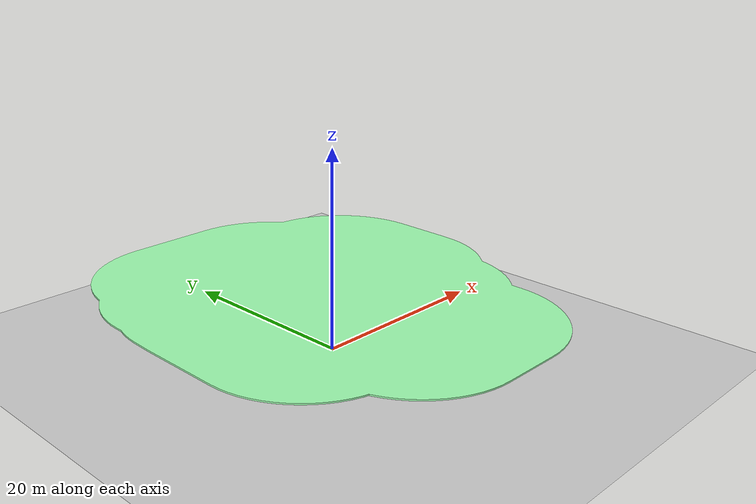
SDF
<sdf version="1.6">
 <world name="default">
  <atmosphere type="adiabatic"/>
  <wind><linear_velocity>0 0 0</linear_velocity></wind>
  <gravity>0 0 -9.8</gravity>
  <model name="static_cylinder">
   <pose>2.57236 -3.92461 0.339561 0 -0 2.93908</pose>
   <static>1</static>
   <allow_auto_disable>0</allow_auto_disable>
   <link name="link">
    <collision name="collision">
     <geometry>
      <cylinder><radius>1.2403268188352738</radius><length>0.6791229968778483</length></cylinder>
     </geometry>
     <max_contacts>20</max_contacts>
    </collision>
    <visual name="visual">
     <geometry>
      <cylinder><radius>1.2403268188352738</radius><length>0.6791229968778483</length></cylinder>
     </geometry>
     <material>
      <ambient>0.964706 0.407843 0.556863 1</ambient>
      <diffuse>0.9647058823529412 0.40784313725490196 0.5568627450980392 1</diffuse>
     </material>
     <transparency>0.0</transparency>
    </visual>
   </link>
  </model>
  <model name="dyn_box">
   <pose>-0.112117 6.78788 1.38852 0 0 -0.950603</pose>
   <static>0</static>
   <allow_auto_disable>0</allow_auto_disable>
   <link name="link">
    <collision name="collision">
     <geometry><box><size>4.59757 4.79995 2.77705</size></box></geometry>
     <max_contacts>20</max_contacts>
    </collision>
    <visual name="visual">
     <geometry><box><size>4.59757 4.79995 2.77705</size></box></geometry>
     <material>
      <ambient>0.780392 0.278431 0.403922 1</ambient>
      <diffuse>0.7803921568627451 0.2784313725490196 0.403921568627451 1</diffuse>
     </material>
     <transparency>0.0</transparency>
    </visual>
    <inertial>
     <inertia>
      <ixx>1.3162738842814965</ixx>
      <iyy>1.234869288223089</iyy>
      <izz>1.8909422509244906</izz>
      <ixy>0.0</ixy>
      <ixz>0.0</ixz>
      <iyz>0.0</iyz>
     </inertia>
     <mass>0.5136428425951027</mass>
    </inertial>
   </link>
  </model>
  <model name="dyn_box_1">
   <pose>-5.99178 8.41546 1.95767 0 -0 1.1997</pose>
   <static>0</static>
   <allow_auto_disable>0</allow_auto_disable>
   <link name="link">
    <collision name="collision">
     <geometry><box><size>3.77422 0.0405218 3.91533</size></box></geometry>
     <max_contacts>20</max_contacts>
    </collision>
    <visual name="visual">
     <geometry><box><size>3.77422 0.0405218 3.91533</size></box></geometry>
     <material>
      <ambient>0.792157 0.482353 0.501961 1</ambient>
      <diffuse>0.792156862745098 0.4823529411764706 0.5019607843137255 1</diffuse>
     </material>
     <transparency>0.0</transparency>
    </visual>
    <inertial>
     <inertia>
      <ixx>1.1927884914722653</ixx>
      <iyy>2.3009015575441274</iyy>
      <izz>1.1083685638994984</izz>
      <ixy>0.0</ixy>
      <ixz>0.0</ixz>
      <iyz>0.0</iyz>
     </inertia>
     <mass>0.933599557756421</mass>
    </inertial>
   </link>
  </model>
  <model name="static_cylinder_1">
   <pose>3.59666 -7.55673 0.225346 0 0 -0.435739</pose>
   <static>1</static>
   <allow_auto_disable>0</allow_auto_disable>
   <link name="link">
    <collision name="collision">
     <geometry>
      <cylinder><radius>0.08633876422519937</radius><length>0.450691455576256</length></cylinder>
     </geometry>
     <max_contacts>20</max_contacts>
    </collision>
    <visual name="visual">
     <geometry>
      <cylinder><radius>0.08633876422519937</radius><length>0.450691455576256</length></cylinder>
     </geometry>
     <material>
      <ambient>0.0156863 0.521569 0.819608 1</ambient>
      <diffuse>0.01568627450980392 0.5215686274509804 0.8196078431372549 1</diffuse>
     </material>
     <transparency>0.0</transparency>
    </visual>
   </link>
  </model>
  <include>
   <uri>model://ceiling_11</uri>
   <pose>0 0 6 0 -0 0</pose>
   <name>ceiling_11</name>
   <static>1</static>
  </include>
  <include><uri>model://ground_plane</uri><name>ground_plane</name><static>1</static></include>
  <include><uri>model://sun</uri></include>
  <physics name="default_physics" default="0" type="ode">
   <gravity>0 0 -9.8066</gravity>
   <ode>
    <solver>
     <type>quick</type>
     <iters>10</iters>
     <sor>1.3</sor>
     <use_dynamic_moi_rescaling>0</use_dynamic_moi_rescaling>
    </solver>
    <constraints>
     <cfm>0</cfm>
     <erp>0.2</erp>
     <contact_max_correcting_vel>100</contact_max_correcting_vel>
     <contact_surface_layer>0.001</contact_surface_layer>
    </constraints>
   </ode>
   <max_step_size>0.004</max_step_size>
   <real_time_factor>1</real_time_factor>
   <real_time_update_rate>250</real_time_update_rate>
   <magnetic_field>6.0e-6 2.3e-5 -4.2e-5</magnetic_field>
  </physics>
  <scene>
   <ambient>0.8 0.8 0.8 1</ambient>
   <background>0.8 0.9 1 1</background>
   <shadows>false</shadows>
   <grid>false</grid>
   <origin_visual>false</origin_visual>
  </scene>
 </world>
</sdf>

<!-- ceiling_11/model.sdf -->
<sdf version="1.6">
  <model name="ceiling_11">
    <pose frame="">0 0 3 0 -0 0</pose>
    <static>1</static>
    <self_collide>0</self_collide>
    <allow_auto_disable>0</allow_auto_disable>
    <link name="mesh">
      <kinematic>0</kinematic>
      <gravity>1</gravity>
      <self_collide>0</self_collide>
      <collision name="collision">
        <geometry>
          <mesh>
            <uri>model://ceiling_11/meshes/lrNFTFQArN.stl</uri>
            <scale>1 1 1</scale>
          </mesh>
        </geometry>
        <pose frame="">3.48871 2.37256 -0.075 0 -0 0</pose>
        <max_contacts>20</max_contacts>
      </collision>
      <visual name="visual">
        <geometry>
          <mesh>
            <uri>model://ceiling_11/meshes/lxhdcesXbC.stl</uri>
            <scale>1 1 1</scale>
          </mesh>
        </geometry>
        <material>
          <ambient>0.623529 0.996078 0.690196 1</ambient>
          <diffuse>0.6235294117647059 0.996078431372549 0.6901960784313725 1</diffuse>
        </material>
        <pose frame="">3.48871 2.37256 -0.075 0 -0 0</pose>
        <cast_shadows>1</cast_shadows>
        <transparency>0.0</transparency>
      </visual>
      <pose frame="">0 0 0 0 -0 0</pose>
    </link>
  </model>
</sdf>
